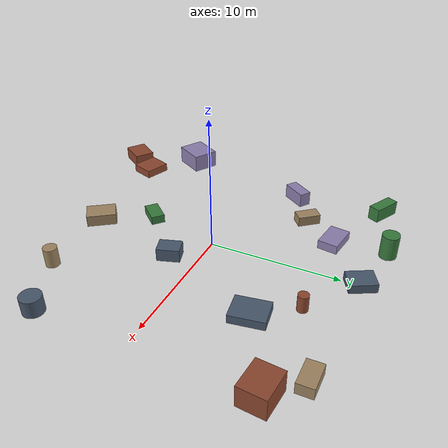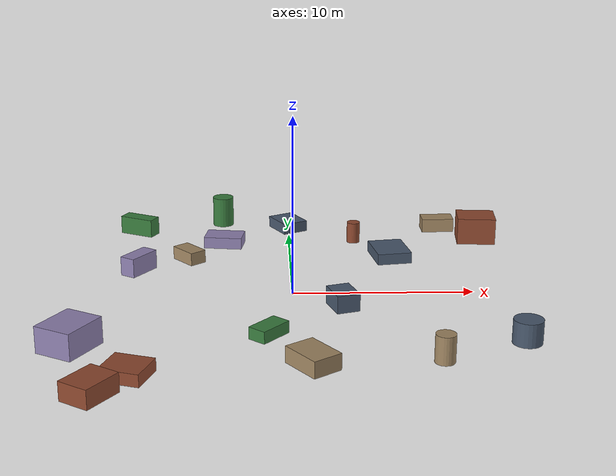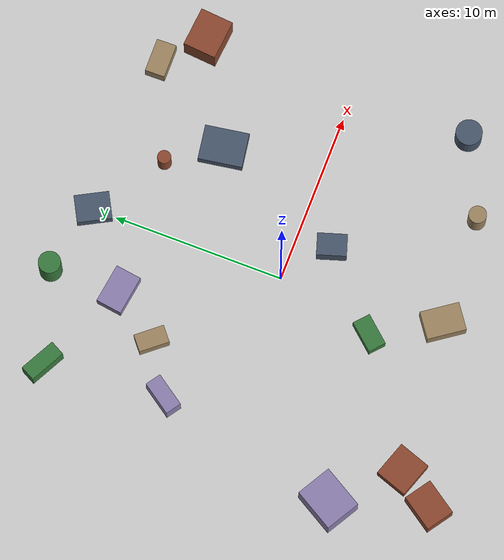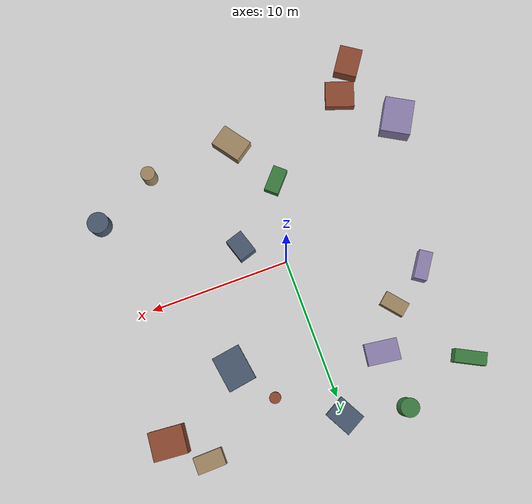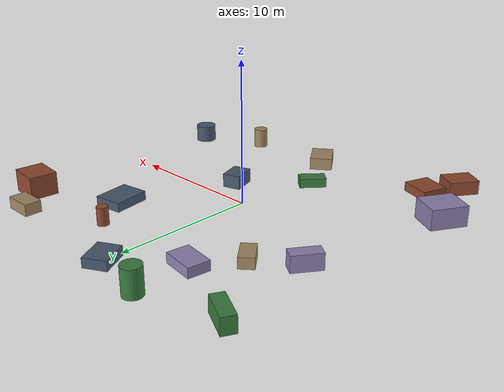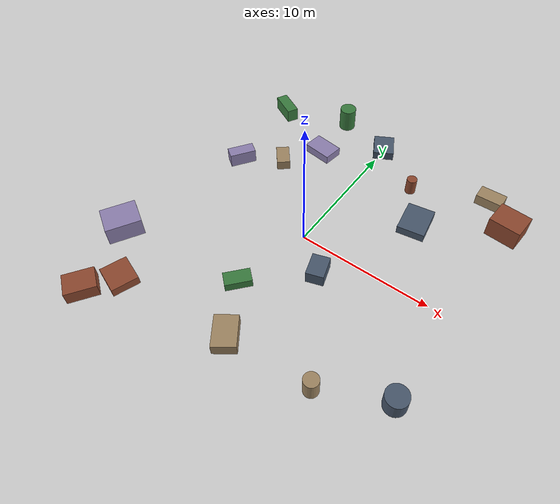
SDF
<sdf version="1.10">
 <world name="robotx_task1_uav_view">
  <gravity>0 0 -9.81</gravity>
  <physics name="physics" type="ode">
   <max_step_size>0.002</max_step_size>
   <real_time_factor>1.0</real_time_factor>
  </physics>
  <scene>
   <ambient>0.22 0.20 0.18 1.0</ambient>
   <background>0.74 0.55 0.44 1.0</background>
   <shadows>true</shadows>
   <grid>false</grid>
  </scene>
  <light name="sun" type="directional">
   <pose>0 0 300 0 0 0</pose>
   <diffuse>0.95 0.74 0.56 1.0</diffuse>
   <specular>1.00 0.87 0.71 1.0</specular>
   <direction>-0.40 0.20 -0.88</direction>
   <attenuation>
    <range>2500</range>
    <constant>0.85</constant>
    <linear>0.001</linear>
    <quadratic>0.00005</quadratic>
   </attenuation>
  </light>
  <plugin filename="gz-sim-physics-system" name="gz::sim::systems::Physics"/>
  <plugin filename="gz-sim-user-commands-system" name="gz::sim::systems::UserCommands"/>
  <plugin filename="gz-sim-scene-broadcaster-system" name="gz::sim::systems::SceneBroadcaster"/>
  <plugin filename="gz-sim-sensors-system" name="gz::sim::systems::Sensors">
   <render_engine>ogre2</render_engine>
  </plugin>
  <model name="scene_clutter_box_000">
   <static>true</static>
   <pose>0.747 -9.439 0.462 0 0 0.617385</pose>
   <link name="link">
    <visual name="v">
     <geometry><box><size>1.635 2.277 0.883</size></box></geometry>
     <material><ambient>0.45 0.38 0.32 1.0</ambient><diffuse>0.62 0.52 0.38 1.0</diffuse></material>
    </visual>
   </link>
  </model>
  <model name="scene_clutter_box_001">
   <static>true</static>
   <pose>5.959 5.753 0.345 0 0 -2.986623</pose>
   <link name="link">
    <visual name="v">
     <geometry><box><size>2.039 2.567 0.650</size></box></geometry>
     <material><ambient>0.18 0.22 0.28 1.0</ambient><diffuse>0.28 0.34 0.42 1.0</diffuse></material>
    </visual>
   </link>
  </model>
  <model name="scene_clutter_box_002">
   <static>true</static>
   <pose>-9.432 -12.344 0.518 0 0 2.540937</pose>
   <link name="link">
    <visual name="v">
     <geometry><box><size>1.686 2.169 0.997</size></box></geometry>
     <material><ambient>0.35 0.16 0.12 1.0</ambient><diffuse>0.55 0.28 0.18 1.0</diffuse></material>
    </visual>
   </link>
  </model>
  <model name="scene_clutter_cyl_003">
   <static>true</static>
   <pose>-4.205 12.286 0.971 0 0 -0.268157</pose>
   <link name="link">
    <visual name="v">
     <geometry><cylinder><radius>0.646</radius><length>1.842</length></cylinder></geometry>
     <material><ambient>0.12 0.30 0.14 1.0</ambient><diffuse>0.22 0.48 0.24 1.0</diffuse></material>
    </visual>
   </link>
  </model>
  <model name="scene_clutter_box_004">
   <static>true</static>
   <pose>-8.833 3.662 0.577 0 0 -0.601981</pose>
   <link name="link">
    <visual name="v">
     <geometry><box><size>0.945 2.043 1.113</size></box></geometry>
     <material><ambient>0.40 0.35 0.50 1.0</ambient><diffuse>0.55 0.50 0.68 1.0</diffuse></material>
    </visual>
   </link>
  </model>
  <model name="scene_clutter_cyl_005">
   <static>true</static>
   <pose>7.070 -9.156 0.782 0 0 2.274655</pose>
   <link name="link">
    <visual name="v">
     <geometry><cylinder><radius>0.516</radius><length>1.465</length></cylinder></geometry>
     <material><ambient>0.45 0.38 0.32 1.0</ambient><diffuse>0.62 0.52 0.38 1.0</diffuse></material>
    </visual>
   </link>
  </model>
  <model name="scene_clutter_cyl_006">
   <static>true</static>
   <pose>11.501 -7.029 0.686 0 0 -1.519945</pose>
   <link name="link">
    <visual name="v">
     <geometry><cylinder><radius>0.765</radius><length>1.271</length></cylinder></geometry>
     <material><ambient>0.18 0.22 0.28 1.0</ambient><diffuse>0.28 0.34 0.42 1.0</diffuse></material>
    </visual>
   </link>
  </model>
  <model name="scene_clutter_box_007">
   <static>true</static>
   <pose>-7.986 -10.273 0.347 0 0 -0.337044</pose>
   <link name="link">
    <visual name="v">
     <geometry><box><size>2.109 1.928 0.655</size></box></geometry>
     <material><ambient>0.35 0.16 0.12 1.0</ambient><diffuse>0.55 0.28 0.18 1.0</diffuse></material>
    </visual>
   </link>
  </model>
  <model name="scene_clutter_box_008">
   <static>true</static>
   <pose>-9.459 10.661 0.569 0 0 1.091120</pose>
   <link name="link">
    <visual name="v">
     <geometry><box><size>0.914 2.216 1.098</size></box></geometry>
     <material><ambient>0.12 0.30 0.14 1.0</ambient><diffuse>0.22 0.48 0.24 1.0</diffuse></material>
    </visual>
   </link>
  </model>
  <model name="scene_clutter_box_009">
   <static>true</static>
   <pose>-4.005 8.247 0.363 0 0 -1.710695</pose>
   <link name="link">
    <visual name="v">
     <geometry><box><size>1.530 2.302 0.687</size></box></geometry>
     <material><ambient>0.40 0.35 0.50 1.0</ambient><diffuse>0.55 0.50 0.68 1.0</diffuse></material>
    </visual>
   </link>
  </model>
  <model name="scene_clutter_box_010">
   <static>true</static>
   <pose>9.530 10.973 0.438 0 0 -3.126563</pose>
   <link name="link">
    <visual name="v">
     <geometry><box><size>1.990 1.169 0.836</size></box></geometry>
     <material><ambient>0.45 0.38 0.32 1.0</ambient><diffuse>0.62 0.52 0.38 1.0</diffuse></material>
    </visual>
   </link>
  </model>
  <model name="scene_clutter_box_011">
   <static>true</static>
   <pose>-0.034 11.361 0.355 0 0 2.066193</pose>
   <link name="link">
    <visual name="v">
     <geometry><box><size>2.012 1.611 0.671</size></box></geometry>
     <material><ambient>0.18 0.22 0.28 1.0</ambient><diffuse>0.28 0.34 0.42 1.0</diffuse></material>
    </visual>
   </link>
  </model>
  <model name="scene_clutter_box_012">
   <static>true</static>
   <pose>11.649 8.876 0.828 0 0 -0.086020</pose>
   <link name="link">
    <visual name="v">
     <geometry><box><size>2.322 1.955 1.615</size></box></geometry>
     <material><ambient>0.35 0.16 0.12 1.0</ambient><diffuse>0.55 0.28 0.18 1.0</diffuse></material>
    </visual>
   </link>
  </model>
  <model name="scene_clutter_box_013">
   <static>true</static>
   <pose>-1.342 -5.803 0.351 0 0 -2.290001</pose>
   <link name="link">
    <visual name="v">
     <geometry><box><size>1.902 1.051 0.663</size></box></geometry>
     <material><ambient>0.12 0.30 0.14 1.0</ambient><diffuse>0.22 0.48 0.24 1.0</diffuse></material>
    </visual>
   </link>
  </model>
  <model name="scene_clutter_box_014">
   <static>true</static>
   <pose>-11.164 -7.037 0.736 0 0 1.045798</pose>
   <link name="link">
    <visual name="v">
     <geometry><box><size>2.584 2.130 1.433</size></box></geometry>
     <material><ambient>0.40 0.35 0.50 1.0</ambient><diffuse>0.55 0.50 0.68 1.0</diffuse></material>
    </visual>
   </link>
  </model>
  <model name="scene_clutter_box_015">
   <static>true</static>
   <pose>-6.017 5.471 0.404 0 0 -0.878426</pose>
   <link name="link">
    <visual name="v">
     <geometry><box><size>1.769 1.028 0.768</size></box></geometry>
     <material><ambient>0.45 0.38 0.32 1.0</ambient><diffuse>0.62 0.52 0.38 1.0</diffuse></material>
    </visual>
   </link>
  </model>
  <model name="scene_clutter_box_016">
   <static>true</static>
   <pose>2.646 -2.067 0.514 0 0 -2.833017</pose>
   <link name="link">
    <visual name="v">
     <geometry><box><size>1.288 1.720 0.989</size></box></geometry>
     <material><ambient>0.18 0.22 0.28 1.0</ambient><diffuse>0.28 0.34 0.42 1.0</diffuse></material>
    </visual>
   </link>
  </model>
  <model name="scene_clutter_cyl_017">
   <static>true</static>
   <pose>3.981 8.589 0.684 0 0 2.512881</pose>
   <link name="link">
    <visual name="v">
     <geometry><cylinder><radius>0.393</radius><length>1.269</length></cylinder></geometry>
     <material><ambient>0.35 0.16 0.12 1.0</ambient><diffuse>0.55 0.28 0.18 1.0</diffuse></material>
    </visual>
   </link>
  </model>
  <model name="uav_dataset_camera">
   <static>false</static>
   <pose>0 0 26 0 0 0</pose>
   <plugin filename="librobotx_overhead_motion_plugin.dylib" name="robotx::OverheadMotionPlugin">
    <radius_x_m>9.10429</radius_x_m>
    <radius_y_m>6.99055</radius_y_m>
    <angular_speed_rad_s>0.046359</angular_speed_rad_s>
    <phase_rad>5.008521</phase_rad>
    <z_wobble_m>0.05235</z_wobble_m>
    <z_wobble_hz>0.03678</z_wobble_hz>
    <z_wobble_phase_rad>5.346039</z_wobble_phase_rad>
   </plugin>
   <link name="camera_link">
    <gravity>false</gravity>
    <sensor name="top_down_rgb" type="camera">
     <always_on>true</always_on>
     <update_rate>20</update_rate>
     <pose>0 0 0 0 1.57079632679 0</pose>
     <camera>
      <horizontal_fov>1.05</horizontal_fov>
      <image><width>1920</width><height>1080</height><format>R8G8B8</format></image>
      <clip><near>0.2</near><far>600</far></clip>
     </camera>
     <topic>/robotx/uav/camera/image_raw</topic>
     <visualize>true</visualize>
    </sensor>
   </link>
  </model>
 </world>
</sdf>
